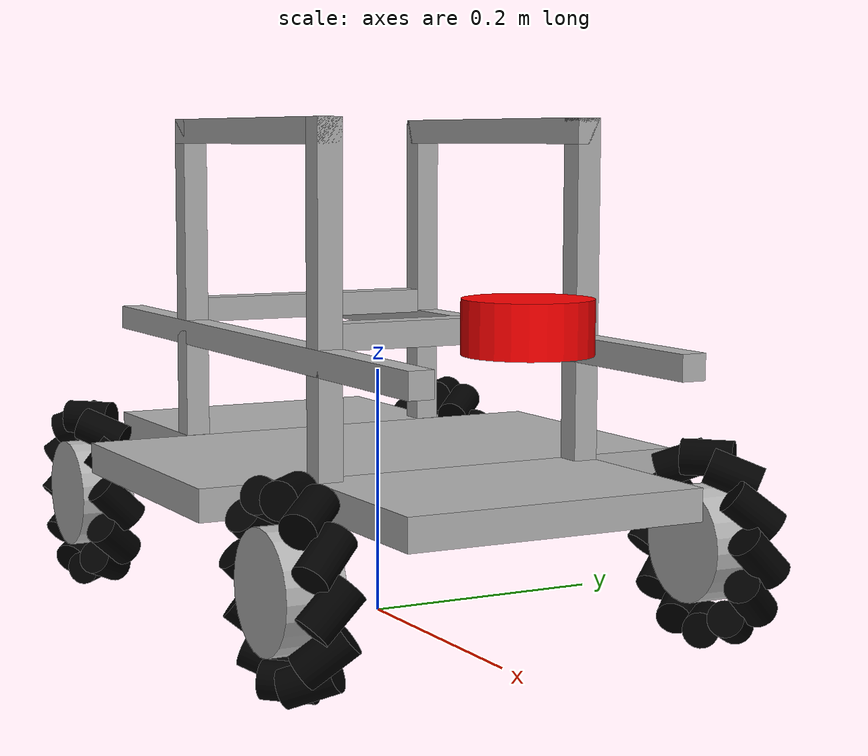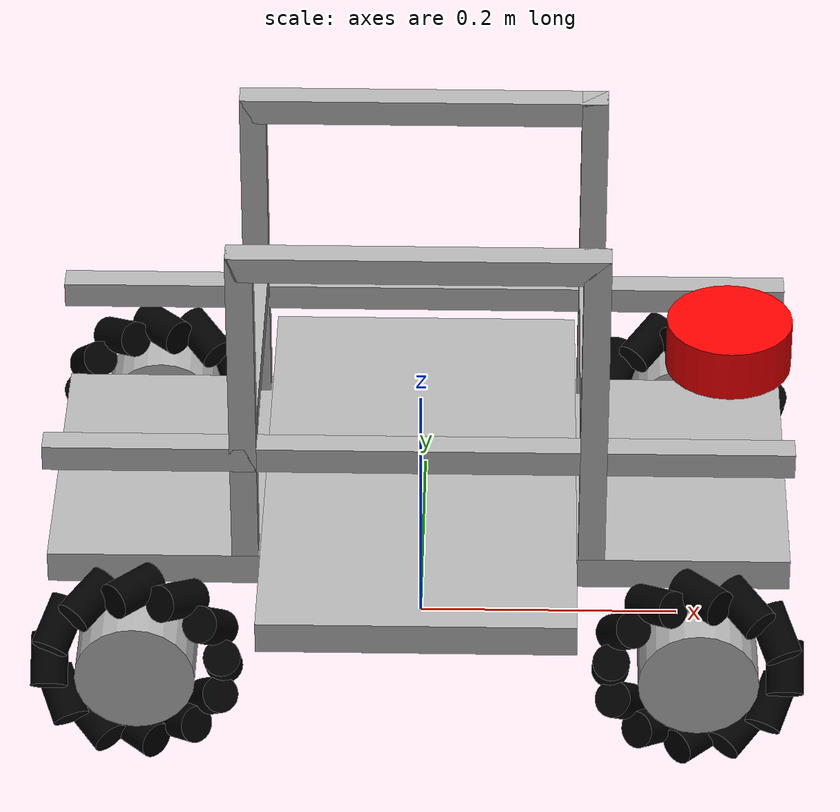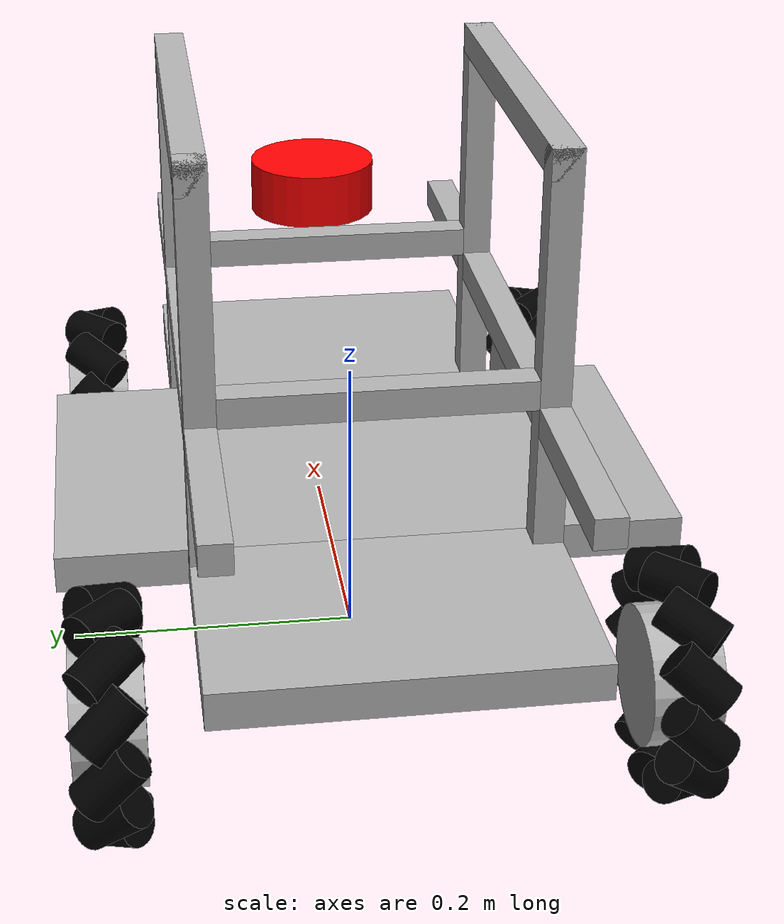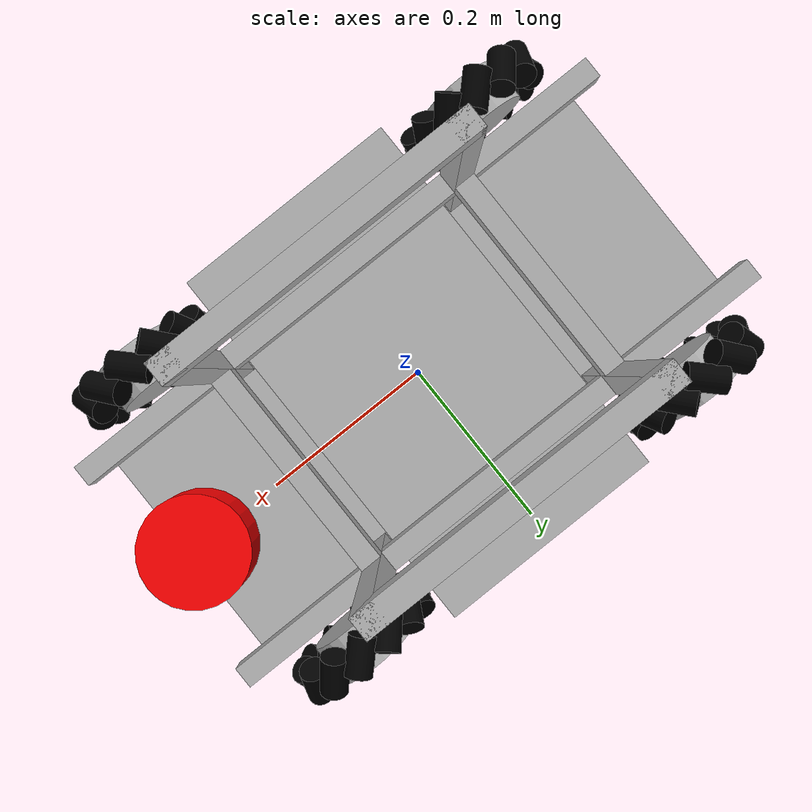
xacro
<?xml version="1.0"?>
<robot name="martha" xmlns:xacro="http://www.ros.org/wiki/xacro">

    <xacro:arg name="drive" default="mecanum" />
    <xacro:arg name="controllers_file" default="$(find martha_arm)/config/controllers.yaml" />
    <xacro:arg name="lidar_samples" default="360" />
    <xacro:arg name="lidar_visualize" default="false" />
    <!-- tower - the aluminium tower on the chassis (ROBOTS['martha_tower']). "false" is the
         robot ROBOTS['martha'] was trained for, without it. -->
    <xacro:arg name="tower" default="true" />
    <!-- with_arm toggles the complete elevator + arm + gripper module. -->
    <xacro:arg name="with_arm" default="false" />

    <!-- Integracion, solo referencias a modulos del brazo. -->
    <xacro:include filename="$(find martha_arm)/urdf/arm.urdf.xacro" />
    <xacro:include filename="$(find martha_arm)/urdf/arm_mount.xacro" />
    <xacro:include filename="$(find martha_arm)/urdf/arm_control.xacro" />

    <material name="black"><color rgba="0 0 0 1" /></material>
    <material name="grey"><color rgba="0.7 0.7 0.7 1" /></material>
    <material name="red"><color rgba="1 0 0 1" /></material>

    <!-- Chassis - a narrow front and rear plate around a wider centre plate. -->
    <xacro:property name="base_front_x" value="0.160" />
    <xacro:property name="base_center_x" value="0.238" />
    <xacro:property name="base_rear_x" value="0.160" />
    <xacro:property name="base_narrow_y" value="0.240" />
    <xacro:property name="base_center_y" value="0.410" />
    <xacro:property name="base_z" value="0.025" />
    <xacro:property name="height_0" value="0.125" />
    <xacro:property name="wheel_length" value="0.045" />
    <xacro:property name="wheel_radius" value="0.075" />
    <!-- Mecanum wheel - a hub plus 12 rollers reaching 0.079 m from the axle. -->
    <xacro:property name="hub_radius" value="0.045" />
    <xacro:property name="roller_radius" value="0.014" />
    <xacro:property name="roller_length" value="0.040" />
    <xacro:property name="roller_mount_radius" value="0.065" />
    <xacro:property name="roller_angle" value="0.785398" />
    <!-- Where the original model puts them. The rollers reach 0.079 m from the axle,
         so the wheels end at 0.21 + 0.079 = 0.289 m, inside the contact shell below. -->
    <xacro:property name="wheel_pos_x" value="0.21" />
    <xacro:property name="wheel_pos_y" value="0.175" />
    <xacro:property name="wheel_pos_z" value="0.08" />
    <xacro:property name="lidar_length" value="0.04" />
    <xacro:property name="lidar_radius" value="0.0475" />
    <!-- lidar_offset_x of ROBOTS['martha'] in martha_nav/robots.py, and where it sits on the robot. -->
    <xacro:property name="lidar_x" value="0.2325" />
    <xacro:property name="contact_shell_x" value="0.580" />
    <xacro:property name="contact_shell_y" value="0.410" />
    <xacro:property name="contact_shell_center_z" value="0.125" />
    <xacro:property name="contact_shell_height" value="0.200" />
    <xacro:property name="lidar_shell_clearance" value="0.010" />
    <xacro:property name="profile" value="0.020" />
    <xacro:property name="profile_kg_per_m" value="0.5" />
    <xacro:property name="post_x" value="0.13" />
    <xacro:property name="post_y" value="0.11" />
    <xacro:property name="post_height" value="0.265" />
    <xacro:property name="crossbar_fraction" value="0.4" />
    <!-- The level the LiDAR rests on, two profiles along x as long as the chassis, in line
         with the posts. -->
    <xacro:property name="level_x" value="${base_front_x + base_center_x + base_rear_x}" />

    <link name="base_link">
        <visual>
            <origin xyz="${base_center_x/2 + base_front_x/2} 0 ${height_0}"/>
            <geometry><box size="${base_front_x} ${base_narrow_y} ${base_z}"/></geometry>
            <material name="grey"/>
        </visual>
        <visual>
            <origin xyz="0 0 ${height_0}"/>
            <geometry><box size="${base_center_x} ${base_center_y} ${base_z}"/></geometry>
            <material name="grey"/>
        </visual>
        <visual>
            <origin xyz="${-(base_center_x/2 + base_rear_x/2)} 0 ${height_0}"/>
            <geometry><box size="${base_rear_x} ${base_narrow_y} ${base_z}"/></geometry>
            <material name="grey"/>
        </visual>

        <!-- One collision only, the contact shell. It is the rectangle the 2D
             simulator checks, 2 cm longer to cover the wheels. -->
        <collision name="contact_shell_collision">
            <origin xyz="0 0 ${contact_shell_center_z}"/>
            <geometry>
                <box size="${contact_shell_x} ${contact_shell_y} ${contact_shell_height}"/>
            </geometry>
        </collision>

        <inertial>
            <mass value="20"/>
            <inertia ixx="0.1" iyy="0.1" izz="0.1" ixy="0" ixz="0" iyz="0"/>
        </inertial>
    </link>

    <link name="lidar">
        <visual>
            <geometry><cylinder length="${lidar_length}" radius="${lidar_radius}"/></geometry>
            <material name="red" />
        </visual>
        <inertial>
            <mass value="0.1"/>
            <inertia ixx="1e-4" ixy="0.0" ixz="0.0" iyy="1e-4" iyz="0.0" izz="1e-4"/>
        </inertial>
    </link>

    <joint name="base_lidar" type="fixed">
        <parent link="base_link" />
        <child link="lidar" />
        <!-- x = 0.2325 m, the value lidar_offset_x uses. The scan plane sits above
             the contact shell so the robot never sees itself. -->
        <origin xyz="${lidar_x} 0 ${contact_shell_center_z + contact_shell_height/2 + lidar_length/2 + lidar_shell_clearance}"/>
    </joint>

    <!-- One straight aluminium profile, fixed to base_link and centred on (x, y, z). -->
    <xacro:macro name="profile_bar" params="name x y z sx sy sz">
        <xacro:property name="mass" value="${profile_kg_per_m * (sx + sy + sz - 2 * profile)}" />
        <link name="${name}">
            <visual>
                <geometry><box size="${sx} ${sy} ${sz}"/></geometry>
                <material name="grey"/>
            </visual>
            <collision>
                <geometry><box size="${sx} ${sy} ${sz}"/></geometry>
            </collision>
            <inertial>
                <mass value="${mass}"/>
                <inertia ixx="${mass * (sy*sy + sz*sz) / 12}" iyy="${mass * (sx*sx + sz*sz) / 12}"
                         izz="${mass * (sx*sx + sy*sy) / 12}" ixy="0" ixz="0" iyz="0"/>
            </inertial>
        </link>
        <joint name="base_${name}_joint" type="fixed">
            <parent link="base_link" />
            <child link="${name}" />
            <origin xyz="${x} ${y} ${z}"/>
        </joint>
        <gazebo reference="${name}">
            <material>Gazebo/Grey</material>
        </gazebo>
    </xacro:macro>

    <xacro:if value="$(arg tower)">
        <xacro:property name="chassis_top" value="${height_0 + base_z/2}" />
        <xacro:property name="tower_top" value="${chassis_top + post_height}" />
        <xacro:property name="inner_y" value="${2*post_y - profile}" />
        <!-- The four posts. They cross the LiDAR's scan plane, so it sees them. -->
        <xacro:profile_bar name="tower_post_front_left" x="${post_x}" y="${post_y}" z="${chassis_top + post_height/2}" sx="${profile}" sy="${profile}" sz="${post_height}" />
        <xacro:profile_bar name="tower_post_front_right" x="${post_x}" y="${-post_y}" z="${chassis_top + post_height/2}" sx="${profile}" sy="${profile}" sz="${post_height}" />
        <xacro:profile_bar name="tower_post_rear_left" x="${-post_x}" y="${post_y}" z="${chassis_top + post_height/2}" sx="${profile}" sy="${profile}" sz="${post_height}" />
        <xacro:profile_bar name="tower_post_rear_right" x="${-post_x}" y="${-post_y}" z="${chassis_top + post_height/2}" sx="${profile}" sy="${profile}" sz="${post_height}" />
        <!-- At the top, a bar along x joining the front and rear post of each side. -->
        <xacro:profile_bar name="tower_top_left" x="0" y="${post_y}" z="${tower_top - profile/2}" sx="${2*post_x + profile}" sy="${profile}" sz="${profile}" />
        <xacro:profile_bar name="tower_top_right" x="0" y="${-post_y}" z="${tower_top - profile/2}" sx="${2*post_x + profile}" sy="${profile}" sz="${profile}" />
        <!-- A crossbar between the two front posts and another between the two rear ones. -->
        <xacro:profile_bar name="tower_crossbar_front" x="${post_x}" y="0" z="${chassis_top + crossbar_fraction*post_height}" sx="${profile}" sy="${inner_y}" sz="${profile}" />
        <xacro:profile_bar name="tower_crossbar_rear" x="${-post_x}" y="0" z="${chassis_top + crossbar_fraction*post_height}" sx="${profile}" sy="${inner_y}" sz="${profile}" />
        <!-- The level, whose top is at the height of the LiDAR's base. -->
        <xacro:property name="level_z" value="${contact_shell_center_z + contact_shell_height/2 + lidar_shell_clearance - profile/2}" />
        <xacro:profile_bar name="tower_level_left" x="0" y="${post_y}" z="${level_z}" sx="${level_x}" sy="${profile}" sz="${profile}" />
        <xacro:profile_bar name="tower_level_right" x="0" y="${-post_y}" z="${level_z}" sx="${level_x}" sy="${profile}" sz="${profile}" />
    </xacro:if>

    <!-- EB300 + elevador integrados, sin duplicar los enlaces de la plataforma. -->
    <xacro:if value="$(arg with_arm)">
        <xacro:eb300_arm mesh_prefix="package://martha_arm/meshes"
                         mesh_collisions="false" />
        <xacro:martha_elevator_mount parent_link="base_link"
                                     chassis_top="${height_0 + base_z/2}"
                                     column_x="0.0" column_y="0.0" />
    </xacro:if>

    <!-- Ruedas, interfaz de velocidad para controlador mecanum existente. -->
    <xacro:macro name="wheel_interface" params="joint">
        <joint name="${joint}">
            <command_interface name="velocity"/>
            <state_interface name="velocity"/>
            <state_interface name="position"/>
        </joint>
    </xacro:macro>

    <!-- Fixed wheels for the planar drive - not actuated, they only carry the chassis. -->
    <xacro:macro name="fixed_wheel" params="name x y">
        <link name="${name}_wheel">
            <visual>
                <geometry><cylinder length="${wheel_length}" radius="${wheel_radius}" /></geometry>
                <material name="black" />
            </visual>
            <collision>
                <geometry><cylinder length="${wheel_length}" radius="${wheel_radius}" /></geometry>
            </collision>
            <inertial>
                <mass value="0.5"/>
                <inertia ixx="0.01" ixy="0.0" ixz="0.0" iyy="0.01" iyz="0.0" izz="0.01"/>
            </inertial>
        </link>
        <joint name="base_${name}_wheel_joint" type="fixed">
            <parent link="base_link" />
            <child link="${name}_wheel" />
            <origin xyz="${x} ${y} ${wheel_pos_z}" rpy="1.570796 0 0" />
        </joint>
        <gazebo reference="${name}_wheel">
            <material>Gazebo/Black</material>
            <mu1>0.2</mu1>
            <mu2>0.2</mu2>
        </gazebo>
    </xacro:macro>

    <!-- Mecanum roller. Without maxVel and minDepth the rollers chatter and the robot hops. -->
    <xacro:macro name="mecanum_roller" params="wheel_name index x y yaw pitch">
        <link name="${wheel_name}_roller_${index}">
            <visual>
                <geometry><cylinder length="${roller_length}" radius="${roller_radius}" /></geometry>
                <material name="black" />
            </visual>
            <collision>
                <geometry><cylinder length="${roller_length}" radius="${roller_radius}" /></geometry>
            </collision>
            <inertial>
                <mass value="0.03"/>
                <inertia ixx="0.00002" ixy="0.0" ixz="0.0" iyy="0.00002" iyz="0.0" izz="0.00001"/>
            </inertial>
        </link>
        <joint name="${wheel_name}_roller_${index}_joint" type="continuous">
            <parent link="${wheel_name}_wheel" />
            <child link="${wheel_name}_roller_${index}" />
            <origin xyz="${x} ${y} 0" rpy="0 ${pitch} ${yaw}" />
            <axis xyz="0 0 1" />
            <dynamics damping="0.01" friction="0.0" />
        </joint>
        <gazebo reference="${wheel_name}_roller_${index}">
            <material>Gazebo/Black</material>
            <mu1>1.0</mu1>
            <mu2>1.0</mu2>
            <kp>100000.0</kp>
            <kd>1.0</kd>
            <minDepth>0.001</minDepth>
            <maxVel>0.1</maxVel>
        </gazebo>
    </xacro:macro>

    <xacro:macro name="mecanum_wheel" params="name x y pitch">
        <link name="${name}_wheel">
            <visual>
                <geometry><cylinder length="${wheel_length}" radius="${hub_radius}" /></geometry>
                <material name="grey" />
            </visual>
            <collision>
                <geometry><cylinder length="${wheel_length}" radius="${hub_radius}" /></geometry>
            </collision>
            <inertial>
                <mass value="0.5"/>
                <inertia ixx="0.01" ixy="0.0" ixz="0.0" iyy="0.01" iyz="0.0" izz="0.01"/>
            </inertial>
        </link>
        <joint name="base_${name}_wheel_joint" type="continuous">
            <parent link="base_link" />
            <child link="${name}_wheel" />
            <origin xyz="${x} ${y} ${wheel_pos_z}" rpy="1.57 0 0" />
            <axis xyz="0 0 -1" />
        </joint>
        <xacro:mecanum_roller wheel_name="${name}" index="00" x="${roller_mount_radius}" y="0" yaw="1.570796" pitch="${pitch}" />
        <xacro:mecanum_roller wheel_name="${name}" index="01" x="${roller_mount_radius * 0.866025}" y="${roller_mount_radius * 0.5}" yaw="2.094395" pitch="${pitch}" />
        <xacro:mecanum_roller wheel_name="${name}" index="02" x="${roller_mount_radius * 0.5}" y="${roller_mount_radius * 0.866025}" yaw="2.617994" pitch="${pitch}" />
        <xacro:mecanum_roller wheel_name="${name}" index="03" x="0" y="${roller_mount_radius}" yaw="3.141593" pitch="${pitch}" />
        <xacro:mecanum_roller wheel_name="${name}" index="04" x="${-roller_mount_radius * 0.5}" y="${roller_mount_radius * 0.866025}" yaw="-2.617994" pitch="${pitch}" />
        <xacro:mecanum_roller wheel_name="${name}" index="05" x="${-roller_mount_radius * 0.866025}" y="${roller_mount_radius * 0.5}" yaw="-2.094395" pitch="${pitch}" />
        <xacro:mecanum_roller wheel_name="${name}" index="06" x="${-roller_mount_radius}" y="0" yaw="-1.570796" pitch="${pitch}" />
        <xacro:mecanum_roller wheel_name="${name}" index="07" x="${-roller_mount_radius * 0.866025}" y="${-roller_mount_radius * 0.5}" yaw="-1.047198" pitch="${pitch}" />
        <xacro:mecanum_roller wheel_name="${name}" index="08" x="${-roller_mount_radius * 0.5}" y="${-roller_mount_radius * 0.866025}" yaw="-0.523599" pitch="${pitch}" />
        <xacro:mecanum_roller wheel_name="${name}" index="09" x="0" y="${-roller_mount_radius}" yaw="0" pitch="${pitch}" />
        <xacro:mecanum_roller wheel_name="${name}" index="10" x="${roller_mount_radius * 0.5}" y="${-roller_mount_radius * 0.866025}" yaw="0.523599" pitch="${pitch}" />
        <xacro:mecanum_roller wheel_name="${name}" index="11" x="${roller_mount_radius * 0.866025}" y="${-roller_mount_radius * 0.5}" yaw="1.047198" pitch="${pitch}" />
    </xacro:macro>

    <xacro:if value="${'$(arg drive)' == 'mecanum'}">
        <xacro:mecanum_wheel name="front_left" x="${wheel_pos_x}" y="${wheel_pos_y}" pitch="${roller_angle}" />
        <xacro:mecanum_wheel name="front_right" x="${wheel_pos_x}" y="${-wheel_pos_y}" pitch="${pi - roller_angle}" />
        <xacro:mecanum_wheel name="rear_left" x="${-wheel_pos_x}" y="${wheel_pos_y}" pitch="${pi - roller_angle}" />
        <xacro:mecanum_wheel name="rear_right" x="${-wheel_pos_x}" y="${-wheel_pos_y}" pitch="${roller_angle}" />

    </xacro:if>

    <xacro:unless value="${'$(arg drive)' == 'mecanum'}">
        <xacro:fixed_wheel name="front_left" x="${wheel_pos_x}" y="${wheel_pos_y}" />
        <xacro:fixed_wheel name="front_right" x="${wheel_pos_x}" y="${-wheel_pos_y}" />
        <xacro:fixed_wheel name="rear_left" x="${-wheel_pos_x}" y="${wheel_pos_y}" />
        <xacro:fixed_wheel name="rear_right" x="${-wheel_pos_x}" y="${-wheel_pos_y}" />
    <gazebo>
        <plugin name="gazebo_ros_planar_move" filename="libgazebo_ros_planar_move.so">
            <ros>
                <remapping>cmd_vel:=/cmd_vel</remapping>
                <remapping>odom:=/odom</remapping>
            </ros>
            <update_rate>100</update_rate>
            <publish_rate>50</publish_rate>
            <publish_odom>true</publish_odom>
            <!-- No EKF here - this plugin owns odom -> base_link. -->
            <publish_odom_tf>true</publish_odom_tf>
            <odometry_frame>odom</odometry_frame>
            <robot_base_frame>base_link</robot_base_frame>
            <covariance_x>0.0001</covariance_x>
            <covariance_y>0.0001</covariance_y>
            <covariance_yaw>0.001</covariance_yaw>
        </plugin>
        </gazebo>
    </xacro:unless>

    <!-- Un unico ros2_control y un unico plugin Gazebo Classic para TODO el robot. -->
    <xacro:if value="${'$(arg drive)' == 'mecanum' or '$(arg with_arm)' == 'true'}">
        <ros2_control name="GazeboSystem" type="system">
            <hardware>
                <plugin>gazebo_ros2_control/GazeboSystem</plugin>
            </hardware>
            <xacro:if value="${'$(arg drive)' == 'mecanum'}">
                <xacro:wheel_interface joint="base_front_left_wheel_joint" />
                <xacro:wheel_interface joint="base_front_right_wheel_joint" />
                <xacro:wheel_interface joint="base_rear_left_wheel_joint" />
                <xacro:wheel_interface joint="base_rear_right_wheel_joint" />
            </xacro:if>
            <xacro:if value="$(arg with_arm)">
                <xacro:arm_ros2_control_interfaces />
            </xacro:if>
        </ros2_control>
        <gazebo>
            <plugin name="gazebo_ros2_control" filename="libgazebo_ros2_control.so">
                <parameters>$(arg controllers_file)</parameters>
                <hold_joints>true</hold_joints>
            </plugin>
        </gazebo>
    </xacro:if>

    <gazebo reference="base_link">
        <material>Gazebo/Grey</material>
        <sensor name="contact_sensor" type="contact">
            <always_on>true</always_on>
            <update_rate>50</update_rate>
            <contact>
                <collision>base_link_fixed_joint_lump__contact_shell_collision_collision</collision>
            </contact>
            <plugin name="gazebo_ros_bumper" filename="libgazebo_ros_bumper.so">
                <frame_name>base_link</frame_name>
            </plugin>
        </sensor>
    </gazebo>

    <gazebo reference="lidar">
        <material>Gazebo/Green</material>
        <sensor name="lidar_sensor" type="ray">
            <always_on>true</always_on>
            <visualize>$(arg lidar_visualize)</visualize>
            <update_rate>10</update_rate>
            <ray>
                <scan>
                    <horizontal>
                        <samples>$(arg lidar_samples)</samples>
                        <resolution>1</resolution>
                        <min_angle>${-pi}</min_angle>
                        <max_angle>${pi}</max_angle>
                    </horizontal>
                </scan>
                <range>
                    <min>0.12</min>
                    <max>8.0</max>
                    <resolution>0.01</resolution>
                </range>
                <noise>
                    <type>gaussian</type>
                    <mean>0.0</mean>
                    <stddev>0.01</stddev>
                </noise>
            </ray>
            <!-- Publishes on /gazebo_ros_lidar/out; the launch file remaps it to /scan
                 for the policy (see the bumper comment above for why not here). -->
            <plugin name="gazebo_ros_lidar" filename="libgazebo_ros_ray_sensor.so">
                <output_type>sensor_msgs/LaserScan</output_type>
                <frame_name>lidar</frame_name>
            </plugin>
        </sensor>
    </gazebo>

</robot>
